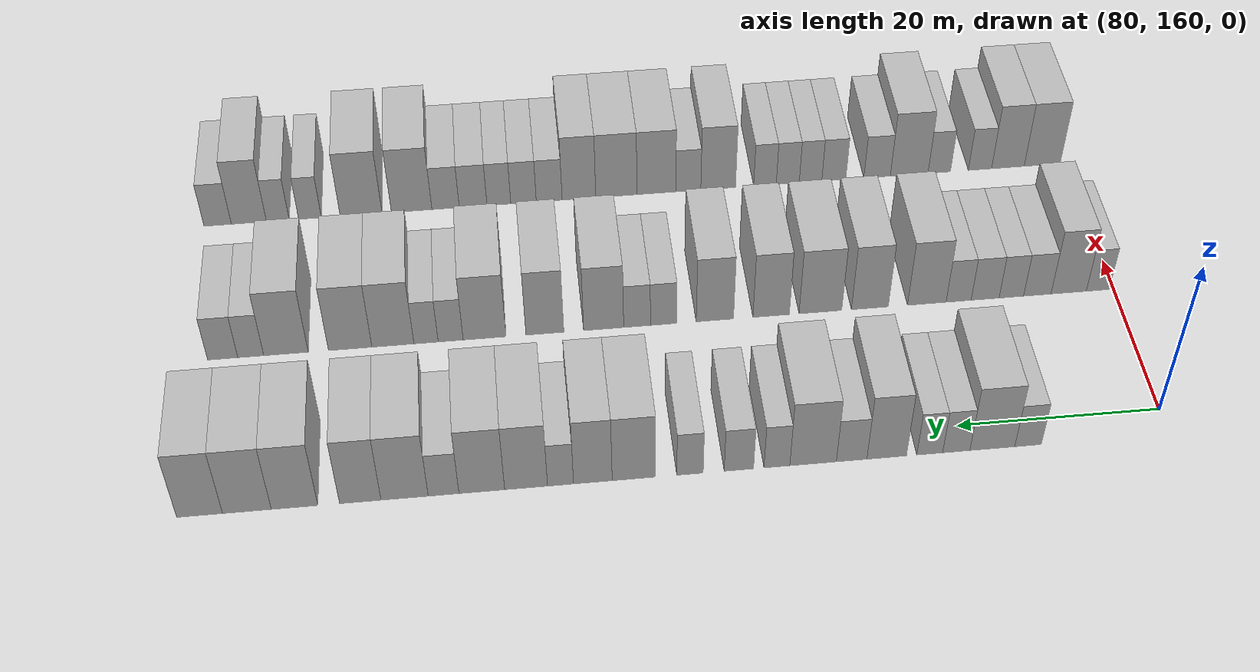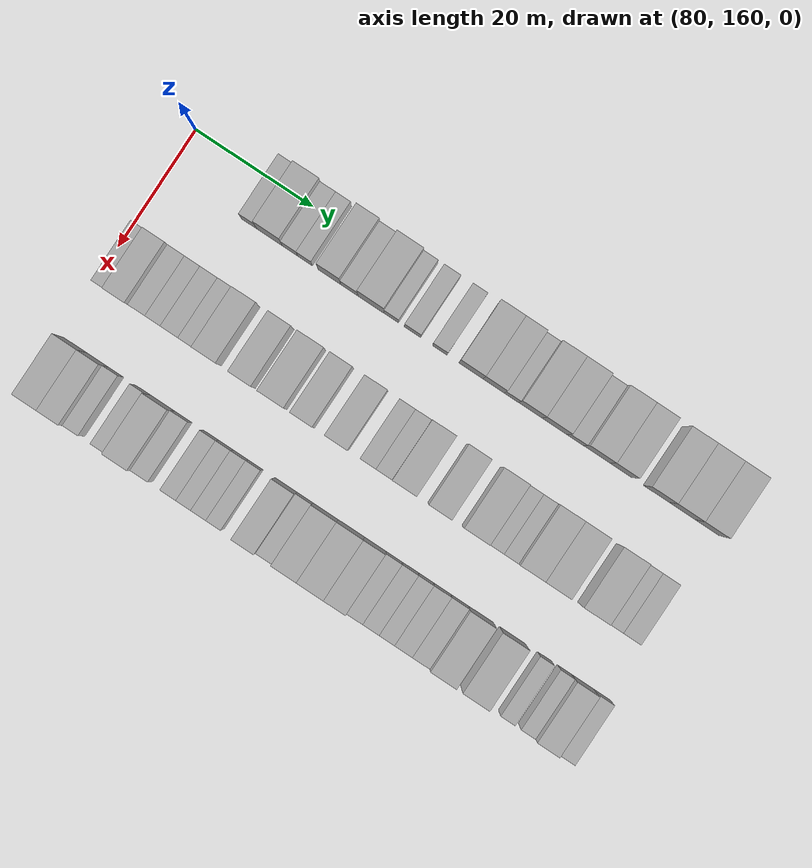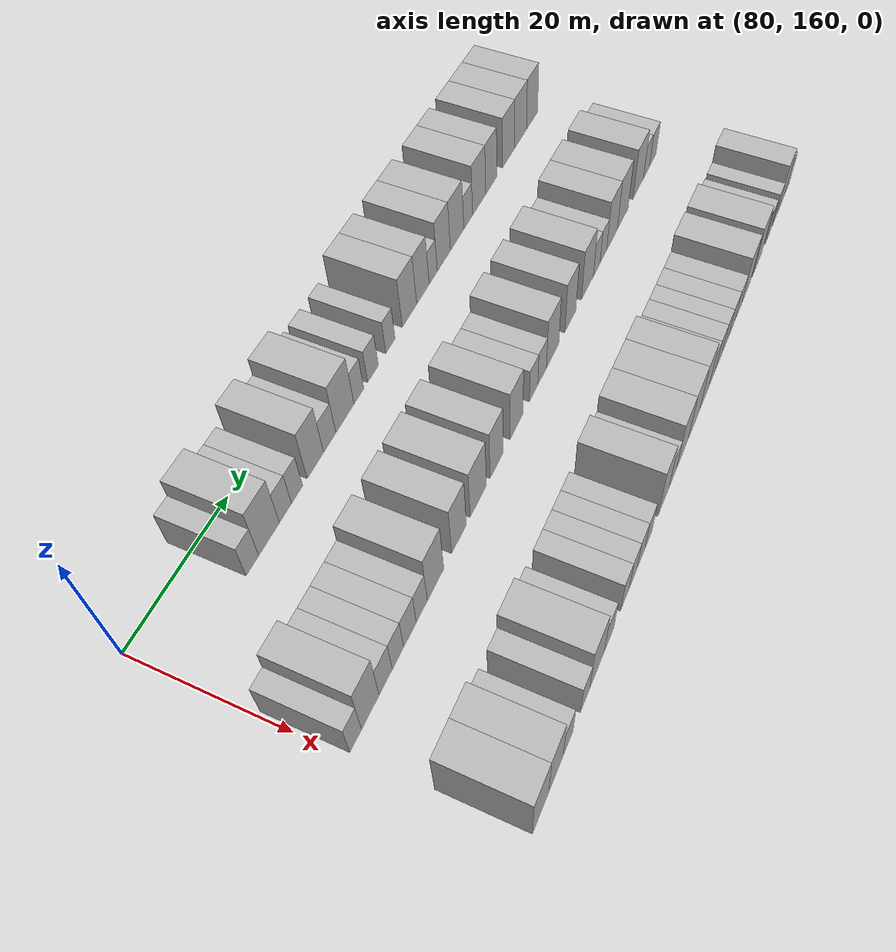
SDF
<sdf version="1.6">
 <world name="default">
  <model name="building_641">
   <static>1</static>
   <pose>82.0000 173.7606 0 0.000000 0.000000 0.000000</pose>
   <link name="link">
    <pose>0 0 3.00 0 0 0</pose>
    <collision name="collision"><geometry><box><size>10.0000 2.5797 6.0000</size></box></geometry></collision>
    <visual name="visual">
     <cast_shadows>0</cast_shadows>
     <geometry><box><size>10.0000 2.5797 6.0000</size></box></geometry>
     <material>
      <script>
       <uri>model://HANNAS_wall/materials/scripts</uri>
       <uri>model://HANNAS_wall/materials/textures</uri>
       <name>vrc/HANNAS_wall</name>
      </script>
     </material>
    </visual>
   </link>
  </model>
  <model name="building_642">
   <static>1</static>
   <pose>82.0000 177.2313 0 0.000000 0.000000 0.000000</pose>
   <link name="link">
    <pose>0 0 4.50 0 0 0</pose>
    <collision name="collision"><geometry><box><size>10.0000 4.3617 9.0000</size></box></geometry></collision>
    <visual name="visual">
     <cast_shadows>0</cast_shadows>
     <geometry><box><size>10.0000 4.3617 9.0000</size></box></geometry>
     <material>
      <script>
       <uri>model://HANNAS_wall/materials/scripts</uri>
       <uri>model://HANNAS_wall/materials/textures</uri>
       <name>vrc/HANNAS_wall</name>
      </script>
     </material>
    </visual>
   </link>
  </model>
  <model name="building_643">
   <static>1</static>
   <pose>82.0000 180.7251 0 0.000000 0.000000 0.000000</pose>
   <link name="link">
    <pose>0 0 3.00 0 0 0</pose>
    <collision name="collision"><geometry><box><size>10.0000 2.6259 6.0000</size></box></geometry></collision>
    <visual name="visual">
     <cast_shadows>0</cast_shadows>
     <geometry><box><size>10.0000 2.6259 6.0000</size></box></geometry>
     <material>
      <script>
       <uri>model://HANNAS_wall/materials/scripts</uri>
       <uri>model://HANNAS_wall/materials/textures</uri>
       <name>vrc/HANNAS_wall</name>
      </script>
     </material>
    </visual>
   </link>
  </model>
  <model name="building_644">
   <static>1</static>
   <pose>82.0000 183.2835 0 0.000000 0.000000 0.000000</pose>
   <link name="link">
    <pose>0 0 3.00 0 0 0</pose>
    <collision name="collision"><geometry><box><size>10.0000 2.4908 6.0000</size></box></geometry></collision>
    <visual name="visual">
     <cast_shadows>0</cast_shadows>
     <geometry><box><size>10.0000 2.4908 6.0000</size></box></geometry>
     <material>
      <script>
       <uri>model://HANNAS_wall/materials/scripts</uri>
       <uri>model://HANNAS_wall/materials/textures</uri>
       <name>vrc/HANNAS_wall</name>
      </script>
     </material>
    </visual>
   </link>
  </model>
  <model name="building_645">
   <static>1</static>
   <pose>82.0000 187.4306 0 0.000000 0.000000 0.000000</pose>
   <link name="link">
    <pose>0 0 4.50 0 0 0</pose>
    <collision name="collision"><geometry><box><size>10.0000 3.8035 9.0000</size></box></geometry></collision>
    <visual name="visual">
     <cast_shadows>0</cast_shadows>
     <geometry><box><size>10.0000 3.8035 9.0000</size></box></geometry>
     <material>
      <script>
       <uri>model://HANNAS_wall/materials/scripts</uri>
       <uri>model://HANNAS_wall/materials/textures</uri>
       <name>vrc/HANNAS_wall</name>
      </script>
     </material>
    </visual>
   </link>
  </model>
  <model name="building_646">
   <static>1</static>
   <pose>82.0000 190.7952 0 0.000000 0.000000 0.000000</pose>
   <link name="link">
    <pose>0 0 3.00 0 0 0</pose>
    <collision name="collision"><geometry><box><size>10.0000 2.9256 6.0000</size></box></geometry></collision>
    <visual name="visual">
     <cast_shadows>0</cast_shadows>
     <geometry><box><size>10.0000 2.9256 6.0000</size></box></geometry>
     <material>
      <script>
       <uri>model://HANNAS_wall/materials/scripts</uri>
       <uri>model://HANNAS_wall/materials/textures</uri>
       <name>vrc/HANNAS_wall</name>
      </script>
     </material>
    </visual>
   </link>
  </model>
  <model name="building_647">
   <static>1</static>
   <pose>82.0000 194.4828 0 0.000000 0.000000 0.000000</pose>
   <link name="link">
    <pose>0 0 4.50 0 0 0</pose>
    <collision name="collision"><geometry><box><size>10.0000 4.4496 9.0000</size></box></geometry></collision>
    <visual name="visual">
     <cast_shadows>0</cast_shadows>
     <geometry><box><size>10.0000 4.4496 9.0000</size></box></geometry>
     <material>
      <script>
       <uri>model://HANNAS_wall/materials/scripts</uri>
       <uri>model://HANNAS_wall/materials/textures</uri>
       <name>vrc/HANNAS_wall</name>
      </script>
     </material>
    </visual>
   </link>
  </model>
  <model name="building_648">
   <static>1</static>
   <pose>82.0000 197.9364 0 0.000000 0.000000 0.000000</pose>
   <link name="link">
    <pose>0 0 3.00 0 0 0</pose>
    <collision name="collision"><geometry><box><size>10.0000 2.4575 6.0000</size></box></geometry></collision>
    <visual name="visual">
     <cast_shadows>0</cast_shadows>
     <geometry><box><size>10.0000 2.4575 6.0000</size></box></geometry>
     <material>
      <script>
       <uri>model://HANNAS_wall/materials/scripts</uri>
       <uri>model://HANNAS_wall/materials/textures</uri>
       <name>vrc/HANNAS_wall</name>
      </script>
     </material>
    </visual>
   </link>
  </model>
  <model name="building_649">
   <static>1</static>
   <pose>82.0000 201.5568 0 0.000000 0.000000 0.000000</pose>
   <link name="link">
    <pose>0 0 3.00 0 0 0</pose>
    <collision name="collision"><geometry><box><size>10.0000 2.7833 6.0000</size></box></geometry></collision>
    <visual name="visual">
     <cast_shadows>0</cast_shadows>
     <geometry><box><size>10.0000 2.7833 6.0000</size></box></geometry>
     <material>
      <script>
       <uri>model://HANNAS_wall/materials/scripts</uri>
       <uri>model://HANNAS_wall/materials/textures</uri>
       <name>vrc/HANNAS_wall</name>
      </script>
     </material>
    </visual>
   </link>
  </model>
  <model name="building_650">
   <static>1</static>
   <pose>82.0000 206.1952 0 0.000000 0.000000 0.000000</pose>
   <link name="link">
    <pose>0 0 3.00 0 0 0</pose>
    <collision name="collision"><geometry><box><size>10.0000 2.4934 6.0000</size></box></geometry></collision>
    <visual name="visual">
     <cast_shadows>0</cast_shadows>
     <geometry><box><size>10.0000 2.4934 6.0000</size></box></geometry>
     <material>
      <script>
       <uri>model://HANNAS_wall/materials/scripts</uri>
       <uri>model://HANNAS_wall/materials/textures</uri>
       <name>vrc/HANNAS_wall</name>
      </script>
     </material>
    </visual>
   </link>
  </model>
  <model name="building_651">
   <static>1</static>
   <pose>82.0000 211.4859 0 0.000000 0.000000 0.000000</pose>
   <link name="link">
    <pose>0 0 4.50 0 0 0</pose>
    <collision name="collision"><geometry><box><size>10.0000 4.0881 9.0000</size></box></geometry></collision>
    <visual name="visual">
     <cast_shadows>0</cast_shadows>
     <geometry><box><size>10.0000 4.0881 9.0000</size></box></geometry>
     <material>
      <script>
       <uri>model://HANNAS_wall/materials/scripts</uri>
       <uri>model://HANNAS_wall/materials/textures</uri>
       <name>vrc/HANNAS_wall</name>
      </script>
     </material>
    </visual>
   </link>
  </model>
  <model name="building_652">
   <static>1</static>
   <pose>82.0000 215.3444 0 0.000000 0.000000 0.000000</pose>
   <link name="link">
    <pose>0 0 4.50 0 0 0</pose>
    <collision name="collision"><geometry><box><size>10.0000 3.6287 9.0000</size></box></geometry></collision>
    <visual name="visual">
     <cast_shadows>0</cast_shadows>
     <geometry><box><size>10.0000 3.6287 9.0000</size></box></geometry>
     <material>
      <script>
       <uri>model://HANNAS_wall/materials/scripts</uri>
       <uri>model://HANNAS_wall/materials/textures</uri>
       <name>vrc/HANNAS_wall</name>
      </script>
     </material>
    </visual>
   </link>
  </model>
  <model name="building_653">
   <static>1</static>
   <pose>82.0000 218.3775 0 0.000000 0.000000 0.000000</pose>
   <link name="link">
    <pose>0 0 3.00 0 0 0</pose>
    <collision name="collision"><geometry><box><size>10.0000 2.4375 6.0000</size></box></geometry></collision>
    <visual name="visual">
     <cast_shadows>0</cast_shadows>
     <geometry><box><size>10.0000 2.4375 6.0000</size></box></geometry>
     <material>
      <script>
       <uri>model://HANNAS_wall/materials/scripts</uri>
       <uri>model://HANNAS_wall/materials/textures</uri>
       <name>vrc/HANNAS_wall</name>
      </script>
     </material>
    </visual>
   </link>
  </model>
  <model name="building_654">
   <static>1</static>
   <pose>82.0000 221.5979 0 0.000000 0.000000 0.000000</pose>
   <link name="link">
    <pose>0 0 4.50 0 0 0</pose>
    <collision name="collision"><geometry><box><size>10.0000 4.0035 9.0000</size></box></geometry></collision>
    <visual name="visual">
     <cast_shadows>0</cast_shadows>
     <geometry><box><size>10.0000 4.0035 9.0000</size></box></geometry>
     <material>
      <script>
       <uri>model://HANNAS_wall/materials/scripts</uri>
       <uri>model://HANNAS_wall/materials/textures</uri>
       <name>vrc/HANNAS_wall</name>
      </script>
     </material>
    </visual>
   </link>
  </model>
  <model name="building_655">
   <static>1</static>
   <pose>82.0000 225.7274 0 0.000000 0.000000 0.000000</pose>
   <link name="link">
    <pose>0 0 4.50 0 0 0</pose>
    <collision name="collision"><geometry><box><size>10.0000 4.2553 9.0000</size></box></geometry></collision>
    <visual name="visual">
     <cast_shadows>0</cast_shadows>
     <geometry><box><size>10.0000 4.2553 9.0000</size></box></geometry>
     <material>
      <script>
       <uri>model://HANNAS_wall/materials/scripts</uri>
       <uri>model://HANNAS_wall/materials/textures</uri>
       <name>vrc/HANNAS_wall</name>
      </script>
     </material>
    </visual>
   </link>
  </model>
  <model name="building_656">
   <static>1</static>
   <pose>82.0000 229.2806 0 0.000000 0.000000 0.000000</pose>
   <link name="link">
    <pose>0 0 3.00 0 0 0</pose>
    <collision name="collision"><geometry><box><size>10.0000 2.8510 6.0000</size></box></geometry></collision>
    <visual name="visual">
     <cast_shadows>0</cast_shadows>
     <geometry><box><size>10.0000 2.8510 6.0000</size></box></geometry>
     <material>
      <script>
       <uri>model://HANNAS_wall/materials/scripts</uri>
       <uri>model://HANNAS_wall/materials/textures</uri>
       <name>vrc/HANNAS_wall</name>
      </script>
     </material>
    </visual>
   </link>
  </model>
  <model name="building_657">
   <static>1</static>
   <pose>82.0000 232.8913 0 0.000000 0.000000 0.000000</pose>
   <link name="link">
    <pose>0 0 4.50 0 0 0</pose>
    <collision name="collision"><geometry><box><size>10.0000 4.3705 9.0000</size></box></geometry></collision>
    <visual name="visual">
     <cast_shadows>0</cast_shadows>
     <geometry><box><size>10.0000 4.3705 9.0000</size></box></geometry>
     <material>
      <script>
       <uri>model://HANNAS_wall/materials/scripts</uri>
       <uri>model://HANNAS_wall/materials/textures</uri>
       <name>vrc/HANNAS_wall</name>
      </script>
     </material>
    </visual>
   </link>
  </model>
  <model name="building_658">
   <static>1</static>
   <pose>82.0000 236.9860 0 0.000000 0.000000 0.000000</pose>
   <link name="link">
    <pose>0 0 4.50 0 0 0</pose>
    <collision name="collision"><geometry><box><size>10.0000 3.8188 9.0000</size></box></geometry></collision>
    <visual name="visual">
     <cast_shadows>0</cast_shadows>
     <geometry><box><size>10.0000 3.8188 9.0000</size></box></geometry>
     <material>
      <script>
       <uri>model://HANNAS_wall/materials/scripts</uri>
       <uri>model://HANNAS_wall/materials/textures</uri>
       <name>vrc/HANNAS_wall</name>
      </script>
     </material>
    </visual>
   </link>
  </model>
  <model name="building_659">
   <static>1</static>
   <pose>82.0000 243.0309 0 0.000000 0.000000 0.000000</pose>
   <link name="link">
    <pose>0 0 4.50 0 0 0</pose>
    <collision name="collision"><geometry><box><size>10.0000 4.2709 9.0000</size></box></geometry></collision>
    <visual name="visual">
     <cast_shadows>0</cast_shadows>
     <geometry><box><size>10.0000 4.2709 9.0000</size></box></geometry>
     <material>
      <script>
       <uri>model://HANNAS_wall/materials/scripts</uri>
       <uri>model://HANNAS_wall/materials/textures</uri>
       <name>vrc/HANNAS_wall</name>
      </script>
     </material>
    </visual>
   </link>
  </model>
  <model name="building_660">
   <static>1</static>
   <pose>82.0000 247.3929 0 0.000000 0.000000 0.000000</pose>
   <link name="link">
    <pose>0 0 4.50 0 0 0</pose>
    <collision name="collision"><geometry><box><size>10.0000 4.4533 9.0000</size></box></geometry></collision>
    <visual name="visual">
     <cast_shadows>0</cast_shadows>
     <geometry><box><size>10.0000 4.4533 9.0000</size></box></geometry>
     <material>
      <script>
       <uri>model://HANNAS_wall/materials/scripts</uri>
       <uri>model://HANNAS_wall/materials/textures</uri>
       <name>vrc/HANNAS_wall</name>
      </script>
     </material>
    </visual>
   </link>
  </model>
  <model name="building_661">
   <static>1</static>
   <pose>82.0000 251.7091 0 0.000000 0.000000 0.000000</pose>
   <link name="link">
    <pose>0 0 4.50 0 0 0</pose>
    <collision name="collision"><geometry><box><size>10.0000 4.1791 9.0000</size></box></geometry></collision>
    <visual name="visual">
     <cast_shadows>0</cast_shadows>
     <geometry><box><size>10.0000 4.1791 9.0000</size></box></geometry>
     <material>
      <script>
       <uri>model://HANNAS_wall/materials/scripts</uri>
       <uri>model://HANNAS_wall/materials/textures</uri>
       <name>vrc/HANNAS_wall</name>
      </script>
     </material>
    </visual>
   </link>
  </model>
  <model name="building_821">
   <static>1</static>
   <pose>101.0000 161.6958 0 0.000000 0.000000 0.000000</pose>
   <link name="link">
    <pose>0 0 3.00 0 0 0</pose>
    <collision name="collision"><geometry><box><size>10.0000 2.4074 6.0000</size></box></geometry></collision>
    <visual name="visual">
     <cast_shadows>0</cast_shadows>
     <geometry><box><size>10.0000 2.4074 6.0000</size></box></geometry>
     <material>
      <script>
       <uri>model://HANNAS_wall/materials/scripts</uri>
       <uri>model://HANNAS_wall/materials/textures</uri>
       <name>vrc/HANNAS_wall</name>
      </script>
     </material>
    </visual>
   </link>
  </model>
  <model name="building_822">
   <static>1</static>
   <pose>101.0000 164.7537 0 0.000000 0.000000 0.000000</pose>
   <link name="link">
    <pose>0 0 4.50 0 0 0</pose>
    <collision name="collision"><geometry><box><size>10.0000 3.7084 9.0000</size></box></geometry></collision>
    <visual name="visual">
     <cast_shadows>0</cast_shadows>
     <geometry><box><size>10.0000 3.7084 9.0000</size></box></geometry>
     <material>
      <script>
       <uri>model://HANNAS_wall/materials/scripts</uri>
       <uri>model://HANNAS_wall/materials/textures</uri>
       <name>vrc/HANNAS_wall</name>
      </script>
     </material>
    </visual>
   </link>
  </model>
  <model name="building_823">
   <static>1</static>
   <pose>101.0000 168.0420 0 0.000000 0.000000 0.000000</pose>
   <link name="link">
    <pose>0 0 3.00 0 0 0</pose>
    <collision name="collision"><geometry><box><size>10.0000 2.8681 6.0000</size></box></geometry></collision>
    <visual name="visual">
     <cast_shadows>0</cast_shadows>
     <geometry><box><size>10.0000 2.8681 6.0000</size></box></geometry>
     <material>
      <script>
       <uri>model://HANNAS_wall/materials/scripts</uri>
       <uri>model://HANNAS_wall/materials/textures</uri>
       <name>vrc/HANNAS_wall</name>
      </script>
     </material>
    </visual>
   </link>
  </model>
  <model name="building_824">
   <static>1</static>
   <pose>101.0000 170.7562 0 0.000000 0.000000 0.000000</pose>
   <link name="link">
    <pose>0 0 3.00 0 0 0</pose>
    <collision name="collision"><geometry><box><size>10.0000 2.5604 6.0000</size></box></geometry></collision>
    <visual name="visual">
     <cast_shadows>0</cast_shadows>
     <geometry><box><size>10.0000 2.5604 6.0000</size></box></geometry>
     <material>
      <script>
       <uri>model://HANNAS_wall/materials/scripts</uri>
       <uri>model://HANNAS_wall/materials/textures</uri>
       <name>vrc/HANNAS_wall</name>
      </script>
     </material>
    </visual>
   </link>
  </model>
  <model name="building_825">
   <static>1</static>
   <pose>101.0000 173.4976 0 0.000000 0.000000 0.000000</pose>
   <link name="link">
    <pose>0 0 3.00 0 0 0</pose>
    <collision name="collision"><geometry><box><size>10.0000 2.9222 6.0000</size></box></geometry></collision>
    <visual name="visual">
     <cast_shadows>0</cast_shadows>
     <geometry><box><size>10.0000 2.9222 6.0000</size></box></geometry>
     <material>
      <script>
       <uri>model://HANNAS_wall/materials/scripts</uri>
       <uri>model://HANNAS_wall/materials/textures</uri>
       <name>vrc/HANNAS_wall</name>
      </script>
     </material>
    </visual>
   </link>
  </model>
  <model name="building_826">
   <static>1</static>
   <pose>101.0000 176.2626 0 0.000000 0.000000 0.000000</pose>
   <link name="link">
    <pose>0 0 3.00 0 0 0</pose>
    <collision name="collision"><geometry><box><size>10.0000 2.6078 6.0000</size></box></geometry></collision>
    <visual name="visual">
     <cast_shadows>0</cast_shadows>
     <geometry><box><size>10.0000 2.6078 6.0000</size></box></geometry>
     <material>
      <script>
       <uri>model://HANNAS_wall/materials/scripts</uri>
       <uri>model://HANNAS_wall/materials/textures</uri>
       <name>vrc/HANNAS_wall</name>
      </script>
     </material>
    </visual>
   </link>
  </model>
  <model name="building_827">
   <static>1</static>
   <pose>101.0000 179.5706 0 0.000000 0.000000 0.000000</pose>
   <link name="link">
    <pose>0 0 4.50 0 0 0</pose>
    <collision name="collision"><geometry><box><size>10.0000 4.0083 9.0000</size></box></geometry></collision>
    <visual name="visual">
     <cast_shadows>0</cast_shadows>
     <geometry><box><size>10.0000 4.0083 9.0000</size></box></geometry>
     <material>
      <script>
       <uri>model://HANNAS_wall/materials/scripts</uri>
       <uri>model://HANNAS_wall/materials/textures</uri>
       <name>vrc/HANNAS_wall</name>
      </script>
     </material>
    </visual>
   </link>
  </model>
  <model name="building_828">
   <static>1</static>
   <pose>101.0000 185.4776 0 0.000000 0.000000 0.000000</pose>
   <link name="link">
    <pose>0 0 4.50 0 0 0</pose>
    <collision name="collision"><geometry><box><size>10.0000 3.8058 9.0000</size></box></geometry></collision>
    <visual name="visual">
     <cast_shadows>0</cast_shadows>
     <geometry><box><size>10.0000 3.8058 9.0000</size></box></geometry>
     <material>
      <script>
       <uri>model://HANNAS_wall/materials/scripts</uri>
       <uri>model://HANNAS_wall/materials/textures</uri>
       <name>vrc/HANNAS_wall</name>
      </script>
     </material>
    </visual>
   </link>
  </model>
  <model name="building_829">
   <static>1</static>
   <pose>101.0000 190.5779 0 0.000000 0.000000 0.000000</pose>
   <link name="link">
    <pose>0 0 4.50 0 0 0</pose>
    <collision name="collision"><geometry><box><size>10.0000 4.3947 9.0000</size></box></geometry></collision>
    <visual name="visual">
     <cast_shadows>0</cast_shadows>
     <geometry><box><size>10.0000 4.3947 9.0000</size></box></geometry>
     <material>
      <script>
       <uri>model://HANNAS_wall/materials/scripts</uri>
       <uri>model://HANNAS_wall/materials/textures</uri>
       <name>vrc/HANNAS_wall</name>
      </script>
     </material>
    </visual>
   </link>
  </model>
  <model name="building_830">
   <static>1</static>
   <pose>101.0000 195.6393 0 0.000000 0.000000 0.000000</pose>
   <link name="link">
    <pose>0 0 4.50 0 0 0</pose>
    <collision name="collision"><geometry><box><size>10.0000 3.7282 9.0000</size></box></geometry></collision>
    <visual name="visual">
     <cast_shadows>0</cast_shadows>
     <geometry><box><size>10.0000 3.7282 9.0000</size></box></geometry>
     <material>
      <script>
       <uri>model://HANNAS_wall/materials/scripts</uri>
       <uri>model://HANNAS_wall/materials/textures</uri>
       <name>vrc/HANNAS_wall</name>
      </script>
     </material>
    </visual>
   </link>
  </model>
  <model name="building_831">
   <static>1</static>
   <pose>101.0000 201.4056 0 0.000000 0.000000 0.000000</pose>
   <link name="link">
    <pose>0 0 4.50 0 0 0</pose>
    <collision name="collision"><geometry><box><size>10.0000 3.8043 9.0000</size></box></geometry></collision>
    <visual name="visual">
     <cast_shadows>0</cast_shadows>
     <geometry><box><size>10.0000 3.8043 9.0000</size></box></geometry>
     <material>
      <script>
       <uri>model://HANNAS_wall/materials/scripts</uri>
       <uri>model://HANNAS_wall/materials/textures</uri>
       <name>vrc/HANNAS_wall</name>
      </script>
     </material>
    </visual>
   </link>
  </model>
  <model name="building_832">
   <static>1</static>
   <pose>101.0000 206.6411 0 0.000000 0.000000 0.000000</pose>
   <link name="link">
    <pose>0 0 3.00 0 0 0</pose>
    <collision name="collision"><geometry><box><size>10.0000 2.6668 6.0000</size></box></geometry></collision>
    <visual name="visual">
     <cast_shadows>0</cast_shadows>
     <geometry><box><size>10.0000 2.6668 6.0000</size></box></geometry>
     <material>
      <script>
       <uri>model://HANNAS_wall/materials/scripts</uri>
       <uri>model://HANNAS_wall/materials/textures</uri>
       <name>vrc/HANNAS_wall</name>
      </script>
     </material>
    </visual>
   </link>
  </model>
  <model name="building_833">
   <static>1</static>
   <pose>101.0000 209.3281 0 0.000000 0.000000 0.000000</pose>
   <link name="link">
    <pose>0 0 3.00 0 0 0</pose>
    <collision name="collision"><geometry><box><size>10.0000 2.7071 6.0000</size></box></geometry></collision>
    <visual name="visual">
     <cast_shadows>0</cast_shadows>
     <geometry><box><size>10.0000 2.7071 6.0000</size></box></geometry>
     <material>
      <script>
       <uri>model://HANNAS_wall/materials/scripts</uri>
       <uri>model://HANNAS_wall/materials/textures</uri>
       <name>vrc/HANNAS_wall</name>
      </script>
     </material>
    </visual>
   </link>
  </model>
  <model name="building_834">
   <static>1</static>
   <pose>101.0000 212.7083 0 0.000000 0.000000 0.000000</pose>
   <link name="link">
    <pose>0 0 4.50 0 0 0</pose>
    <collision name="collision"><geometry><box><size>10.0000 4.0533 9.0000</size></box></geometry></collision>
    <visual name="visual">
     <cast_shadows>0</cast_shadows>
     <geometry><box><size>10.0000 4.0533 9.0000</size></box></geometry>
     <material>
      <script>
       <uri>model://HANNAS_wall/materials/scripts</uri>
       <uri>model://HANNAS_wall/materials/textures</uri>
       <name>vrc/HANNAS_wall</name>
      </script>
     </material>
    </visual>
   </link>
  </model>
  <model name="building_835">
   <static>1</static>
   <pose>101.0000 218.6428 0 0.000000 0.000000 0.000000</pose>
   <link name="link">
    <pose>0 0 4.50 0 0 0</pose>
    <collision name="collision"><geometry><box><size>10.0000 3.8157 9.0000</size></box></geometry></collision>
    <visual name="visual">
     <cast_shadows>0</cast_shadows>
     <geometry><box><size>10.0000 3.8157 9.0000</size></box></geometry>
     <material>
      <script>
       <uri>model://HANNAS_wall/materials/scripts</uri>
       <uri>model://HANNAS_wall/materials/textures</uri>
       <name>vrc/HANNAS_wall</name>
      </script>
     </material>
    </visual>
   </link>
  </model>
  <model name="building_836">
   <static>1</static>
   <pose>101.0000 224.7017 0 0.000000 0.000000 0.000000</pose>
   <link name="link">
    <pose>0 0 4.50 0 0 0</pose>
    <collision name="collision"><geometry><box><size>10.0000 4.3021 9.0000</size></box></geometry></collision>
    <visual name="visual">
     <cast_shadows>0</cast_shadows>
     <geometry><box><size>10.0000 4.3021 9.0000</size></box></geometry>
     <material>
      <script>
       <uri>model://HANNAS_wall/materials/scripts</uri>
       <uri>model://HANNAS_wall/materials/textures</uri>
       <name>vrc/HANNAS_wall</name>
      </script>
     </material>
    </visual>
   </link>
  </model>
  <model name="building_837">
   <static>1</static>
   <pose>101.0000 228.1011 0 0.000000 0.000000 0.000000</pose>
   <link name="link">
    <pose>0 0 3.00 0 0 0</pose>
    <collision name="collision"><geometry><box><size>10.0000 2.4968 6.0000</size></box></geometry></collision>
    <visual name="visual">
     <cast_shadows>0</cast_shadows>
     <geometry><box><size>10.0000 2.4968 6.0000</size></box></geometry>
     <material>
      <script>
       <uri>model://HANNAS_wall/materials/scripts</uri>
       <uri>model://HANNAS_wall/materials/textures</uri>
       <name>vrc/HANNAS_wall</name>
      </script>
     </material>
    </visual>
   </link>
  </model>
  <model name="building_838">
   <static>1</static>
   <pose>101.0000 230.5631 0 0.000000 0.000000 0.000000</pose>
   <link name="link">
    <pose>0 0 3.00 0 0 0</pose>
    <collision name="collision"><geometry><box><size>10.0000 2.4270 6.0000</size></box></geometry></collision>
    <visual name="visual">
     <cast_shadows>0</cast_shadows>
     <geometry><box><size>10.0000 2.4270 6.0000</size></box></geometry>
     <material>
      <script>
       <uri>model://HANNAS_wall/materials/scripts</uri>
       <uri>model://HANNAS_wall/materials/textures</uri>
       <name>vrc/HANNAS_wall</name>
      </script>
     </material>
    </visual>
   </link>
  </model>
  <model name="building_839">
   <static>1</static>
   <pose>101.0000 233.8671 0 0.000000 0.000000 0.000000</pose>
   <link name="link">
    <pose>0 0 4.50 0 0 0</pose>
    <collision name="collision"><geometry><box><size>10.0000 4.1810 9.0000</size></box></geometry></collision>
    <visual name="visual">
     <cast_shadows>0</cast_shadows>
     <geometry><box><size>10.0000 4.1810 9.0000</size></box></geometry>
     <material>
      <script>
       <uri>model://HANNAS_wall/materials/scripts</uri>
       <uri>model://HANNAS_wall/materials/textures</uri>
       <name>vrc/HANNAS_wall</name>
      </script>
     </material>
    </visual>
   </link>
  </model>
  <model name="building_840">
   <static>1</static>
   <pose>101.0000 238.1121 0 0.000000 0.000000 0.000000</pose>
   <link name="link">
    <pose>0 0 4.50 0 0 0</pose>
    <collision name="collision"><geometry><box><size>10.0000 4.3090 9.0000</size></box></geometry></collision>
    <visual name="visual">
     <cast_shadows>0</cast_shadows>
     <geometry><box><size>10.0000 4.3090 9.0000</size></box></geometry>
     <material>
      <script>
       <uri>model://HANNAS_wall/materials/scripts</uri>
       <uri>model://HANNAS_wall/materials/textures</uri>
       <name>vrc/HANNAS_wall</name>
      </script>
     </material>
    </visual>
   </link>
  </model>
  <model name="building_841">
   <static>1</static>
   <pose>101.0000 244.4631 0 0.000000 0.000000 0.000000</pose>
   <link name="link">
    <pose>0 0 4.50 0 0 0</pose>
    <collision name="collision"><geometry><box><size>10.0000 4.3930 9.0000</size></box></geometry></collision>
    <visual name="visual">
     <cast_shadows>0</cast_shadows>
     <geometry><box><size>10.0000 4.3930 9.0000</size></box></geometry>
     <material>
      <script>
       <uri>model://HANNAS_wall/materials/scripts</uri>
       <uri>model://HANNAS_wall/materials/textures</uri>
       <name>vrc/HANNAS_wall</name>
      </script>
     </material>
    </visual>
   </link>
  </model>
  <model name="building_842">
   <static>1</static>
   <pose>101.0000 247.9395 0 0.000000 0.000000 0.000000</pose>
   <link name="link">
    <pose>0 0 3.00 0 0 0</pose>
    <collision name="collision"><geometry><box><size>10.0000 2.5599 6.0000</size></box></geometry></collision>
    <visual name="visual">
     <cast_shadows>0</cast_shadows>
     <geometry><box><size>10.0000 2.5599 6.0000</size></box></geometry>
     <material>
      <script>
       <uri>model://HANNAS_wall/materials/scripts</uri>
       <uri>model://HANNAS_wall/materials/textures</uri>
       <name>vrc/HANNAS_wall</name>
      </script>
     </material>
    </visual>
   </link>
  </model>
  <model name="building_843">
   <static>1</static>
   <pose>101.0000 250.6990 0 0.000000 0.000000 0.000000</pose>
   <link name="link">
    <pose>0 0 3.00 0 0 0</pose>
    <collision name="collision"><geometry><box><size>10.0000 2.9591 6.0000</size></box></geometry></collision>
    <visual name="visual">
     <cast_shadows>0</cast_shadows>
     <geometry><box><size>10.0000 2.9591 6.0000</size></box></geometry>
     <material>
      <script>
       <uri>model://HANNAS_wall/materials/scripts</uri>
       <uri>model://HANNAS_wall/materials/textures</uri>
       <name>vrc/HANNAS_wall</name>
      </script>
     </material>
    </visual>
   </link>
  </model>
  <model name="building_995">
   <static>1</static>
   <pose>120.0000 162.6747 0 0.000000 0.000000 0.000000</pose>
   <link name="link">
    <pose>0 0 4.50 0 0 0</pose>
    <collision name="collision"><geometry><box><size>10.0000 4.0329 9.0000</size></box></geometry></collision>
    <visual name="visual">
     <cast_shadows>0</cast_shadows>
     <geometry><box><size>10.0000 4.0329 9.0000</size></box></geometry>
     <material>
      <script>
       <uri>model://HANNAS_wall/materials/scripts</uri>
       <uri>model://HANNAS_wall/materials/textures</uri>
       <name>vrc/HANNAS_wall</name>
      </script>
     </material>
    </visual>
   </link>
  </model>
  <model name="building_996">
   <static>1</static>
   <pose>120.0000 166.5208 0 0.000000 0.000000 0.000000</pose>
   <link name="link">
    <pose>0 0 4.50 0 0 0</pose>
    <collision name="collision"><geometry><box><size>10.0000 3.6595 9.0000</size></box></geometry></collision>
    <visual name="visual">
     <cast_shadows>0</cast_shadows>
     <geometry><box><size>10.0000 3.6595 9.0000</size></box></geometry>
     <material>
      <script>
       <uri>model://HANNAS_wall/materials/scripts</uri>
       <uri>model://HANNAS_wall/materials/textures</uri>
       <name>vrc/HANNAS_wall</name>
      </script>
     </material>
    </visual>
   </link>
  </model>
  <model name="building_997">
   <static>1</static>
   <pose>120.0000 169.6492 0 0.000000 0.000000 0.000000</pose>
   <link name="link">
    <pose>0 0 3.00 0 0 0</pose>
    <collision name="collision"><geometry><box><size>10.0000 2.5972 6.0000</size></box></geometry></collision>
    <visual name="visual">
     <cast_shadows>0</cast_shadows>
     <geometry><box><size>10.0000 2.5972 6.0000</size></box></geometry>
     <material>
      <script>
       <uri>model://HANNAS_wall/materials/scripts</uri>
       <uri>model://HANNAS_wall/materials/textures</uri>
       <name>vrc/HANNAS_wall</name>
      </script>
     </material>
    </visual>
   </link>
  </model>
  <model name="building_998">
   <static>1</static>
   <pose>120.0000 174.1956 0 0.000000 0.000000 0.000000</pose>
   <link name="link">
    <pose>0 0 3.00 0 0 0</pose>
    <collision name="collision"><geometry><box><size>10.0000 2.4956 6.0000</size></box></geometry></collision>
    <visual name="visual">
     <cast_shadows>0</cast_shadows>
     <geometry><box><size>10.0000 2.4956 6.0000</size></box></geometry>
     <material>
      <script>
       <uri>model://HANNAS_wall/materials/scripts</uri>
       <uri>model://HANNAS_wall/materials/textures</uri>
       <name>vrc/HANNAS_wall</name>
      </script>
     </material>
    </visual>
   </link>
  </model>
  <model name="building_999">
   <static>1</static>
   <pose>120.0000 177.5389 0 0.000000 0.000000 0.000000</pose>
   <link name="link">
    <pose>0 0 4.50 0 0 0</pose>
    <collision name="collision"><geometry><box><size>10.0000 4.1911 9.0000</size></box></geometry></collision>
    <visual name="visual">
     <cast_shadows>0</cast_shadows>
     <geometry><box><size>10.0000 4.1911 9.0000</size></box></geometry>
     <material>
      <script>
       <uri>model://HANNAS_wall/materials/scripts</uri>
       <uri>model://HANNAS_wall/materials/textures</uri>
       <name>vrc/HANNAS_wall</name>
      </script>
     </material>
    </visual>
   </link>
  </model>
  <model name="building_1000">
   <static>1</static>
   <pose>120.0000 181.1027 0 0.000000 0.000000 0.000000</pose>
   <link name="link">
    <pose>0 0 3.00 0 0 0</pose>
    <collision name="collision"><geometry><box><size>10.0000 2.9364 6.0000</size></box></geometry></collision>
    <visual name="visual">
     <cast_shadows>0</cast_shadows>
     <geometry><box><size>10.0000 2.9364 6.0000</size></box></geometry>
     <material>
      <script>
       <uri>model://HANNAS_wall/materials/scripts</uri>
       <uri>model://HANNAS_wall/materials/textures</uri>
       <name>vrc/HANNAS_wall</name>
      </script>
     </material>
    </visual>
   </link>
  </model>
  <model name="building_1001">
   <static>1</static>
   <pose>120.0000 185.8954 0 0.000000 0.000000 0.000000</pose>
   <link name="link">
    <pose>0 0 3.00 0 0 0</pose>
    <collision name="collision"><geometry><box><size>10.0000 2.6491 6.0000</size></box></geometry></collision>
    <visual name="visual">
     <cast_shadows>0</cast_shadows>
     <geometry><box><size>10.0000 2.6491 6.0000</size></box></geometry>
     <material>
      <script>
       <uri>model://HANNAS_wall/materials/scripts</uri>
       <uri>model://HANNAS_wall/materials/textures</uri>
       <name>vrc/HANNAS_wall</name>
      </script>
     </material>
    </visual>
   </link>
  </model>
  <model name="building_1002">
   <static>1</static>
   <pose>120.0000 188.4627 0 0.000000 0.000000 0.000000</pose>
   <link name="link">
    <pose>0 0 3.00 0 0 0</pose>
    <collision name="collision"><geometry><box><size>10.0000 2.4854 6.0000</size></box></geometry></collision>
    <visual name="visual">
     <cast_shadows>0</cast_shadows>
     <geometry><box><size>10.0000 2.4854 6.0000</size></box></geometry>
     <material>
      <script>
       <uri>model://HANNAS_wall/materials/scripts</uri>
       <uri>model://HANNAS_wall/materials/textures</uri>
       <name>vrc/HANNAS_wall</name>
      </script>
     </material>
    </visual>
   </link>
  </model>
  <model name="building_1003">
   <static>1</static>
   <pose>120.0000 190.9725 0 0.000000 0.000000 0.000000</pose>
   <link name="link">
    <pose>0 0 3.00 0 0 0</pose>
    <collision name="collision"><geometry><box><size>10.0000 2.5342 6.0000</size></box></geometry></collision>
    <visual name="visual">
     <cast_shadows>0</cast_shadows>
     <geometry><box><size>10.0000 2.5342 6.0000</size></box></geometry>
     <material>
      <script>
       <uri>model://HANNAS_wall/materials/scripts</uri>
       <uri>model://HANNAS_wall/materials/textures</uri>
       <name>vrc/HANNAS_wall</name>
      </script>
     </material>
    </visual>
   </link>
  </model>
  <model name="building_1004">
   <static>1</static>
   <pose>120.0000 193.4775 0 0.000000 0.000000 0.000000</pose>
   <link name="link">
    <pose>0 0 3.00 0 0 0</pose>
    <collision name="collision"><geometry><box><size>10.0000 2.4759 6.0000</size></box></geometry></collision>
    <visual name="visual">
     <cast_shadows>0</cast_shadows>
     <geometry><box><size>10.0000 2.4759 6.0000</size></box></geometry>
     <material>
      <script>
       <uri>model://HANNAS_wall/materials/scripts</uri>
       <uri>model://HANNAS_wall/materials/textures</uri>
       <name>vrc/HANNAS_wall</name>
      </script>
     </material>
    </visual>
   </link>
  </model>
  <model name="building_1005">
   <static>1</static>
   <pose>120.0000 198.6137 0 0.000000 0.000000 0.000000</pose>
   <link name="link">
    <pose>0 0 4.50 0 0 0</pose>
    <collision name="collision"><geometry><box><size>10.0000 3.7964 9.0000</size></box></geometry></collision>
    <visual name="visual">
     <cast_shadows>0</cast_shadows>
     <geometry><box><size>10.0000 3.7964 9.0000</size></box></geometry>
     <material>
      <script>
       <uri>model://HANNAS_wall/materials/scripts</uri>
       <uri>model://HANNAS_wall/materials/textures</uri>
       <name>vrc/HANNAS_wall</name>
      </script>
     </material>
    </visual>
   </link>
  </model>
  <model name="building_1006">
   <static>1</static>
   <pose>120.0000 201.8765 0 0.000000 0.000000 0.000000</pose>
   <link name="link">
    <pose>0 0 3.00 0 0 0</pose>
    <collision name="collision"><geometry><box><size>10.0000 2.7291 6.0000</size></box></geometry></collision>
    <visual name="visual">
     <cast_shadows>0</cast_shadows>
     <geometry><box><size>10.0000 2.7291 6.0000</size></box></geometry>
     <material>
      <script>
       <uri>model://HANNAS_wall/materials/scripts</uri>
       <uri>model://HANNAS_wall/materials/textures</uri>
       <name>vrc/HANNAS_wall</name>
      </script>
     </material>
    </visual>
   </link>
  </model>
  <model name="building_1007">
   <static>1</static>
   <pose>120.0000 205.3583 0 0.000000 0.000000 0.000000</pose>
   <link name="link">
    <pose>0 0 4.50 0 0 0</pose>
    <collision name="collision"><geometry><box><size>10.0000 4.2345 9.0000</size></box></geometry></collision>
    <visual name="visual">
     <cast_shadows>0</cast_shadows>
     <geometry><box><size>10.0000 4.2345 9.0000</size></box></geometry>
     <material>
      <script>
       <uri>model://HANNAS_wall/materials/scripts</uri>
       <uri>model://HANNAS_wall/materials/textures</uri>
       <name>vrc/HANNAS_wall</name>
      </script>
     </material>
    </visual>
   </link>
  </model>
  <model name="building_1008">
   <static>1</static>
   <pose>120.0000 209.7074 0 0.000000 0.000000 0.000000</pose>
   <link name="link">
    <pose>0 0 4.50 0 0 0</pose>
    <collision name="collision"><geometry><box><size>10.0000 4.4637 9.0000</size></box></geometry></collision>
    <visual name="visual">
     <cast_shadows>0</cast_shadows>
     <geometry><box><size>10.0000 4.4637 9.0000</size></box></geometry>
     <material>
      <script>
       <uri>model://HANNAS_wall/materials/scripts</uri>
       <uri>model://HANNAS_wall/materials/textures</uri>
       <name>vrc/HANNAS_wall</name>
      </script>
     </material>
    </visual>
   </link>
  </model>
  <model name="building_1009">
   <static>1</static>
   <pose>120.0000 213.7612 0 0.000000 0.000000 0.000000</pose>
   <link name="link">
    <pose>0 0 4.50 0 0 0</pose>
    <collision name="collision"><geometry><box><size>10.0000 3.6440 9.0000</size></box></geometry></collision>
    <visual name="visual">
     <cast_shadows>0</cast_shadows>
     <geometry><box><size>10.0000 3.6440 9.0000</size></box></geometry>
     <material>
      <script>
       <uri>model://HANNAS_wall/materials/scripts</uri>
       <uri>model://HANNAS_wall/materials/textures</uri>
       <name>vrc/HANNAS_wall</name>
      </script>
     </material>
    </visual>
   </link>
  </model>
  <model name="building_1010">
   <static>1</static>
   <pose>120.0000 216.9775 0 0.000000 0.000000 0.000000</pose>
   <link name="link">
    <pose>0 0 3.00 0 0 0</pose>
    <collision name="collision"><geometry><box><size>10.0000 2.7886 6.0000</size></box></geometry></collision>
    <visual name="visual">
     <cast_shadows>0</cast_shadows>
     <geometry><box><size>10.0000 2.7886 6.0000</size></box></geometry>
     <material>
      <script>
       <uri>model://HANNAS_wall/materials/scripts</uri>
       <uri>model://HANNAS_wall/materials/textures</uri>
       <name>vrc/HANNAS_wall</name>
      </script>
     </material>
    </visual>
   </link>
  </model>
  <model name="building_1011">
   <static>1</static>
   <pose>120.0000 219.7453 0 0.000000 0.000000 0.000000</pose>
   <link name="link">
    <pose>0 0 3.00 0 0 0</pose>
    <collision name="collision"><geometry><box><size>10.0000 2.7471 6.0000</size></box></geometry></collision>
    <visual name="visual">
     <cast_shadows>0</cast_shadows>
     <geometry><box><size>10.0000 2.7471 6.0000</size></box></geometry>
     <material>
      <script>
       <uri>model://HANNAS_wall/materials/scripts</uri>
       <uri>model://HANNAS_wall/materials/textures</uri>
       <name>vrc/HANNAS_wall</name>
      </script>
     </material>
    </visual>
   </link>
  </model>
  <model name="building_1012">
   <static>1</static>
   <pose>120.0000 222.4003 0 0.000000 0.000000 0.000000</pose>
   <link name="link">
    <pose>0 0 3.00 0 0 0</pose>
    <collision name="collision"><geometry><box><size>10.0000 2.5627 6.0000</size></box></geometry></collision>
    <visual name="visual">
     <cast_shadows>0</cast_shadows>
     <geometry><box><size>10.0000 2.5627 6.0000</size></box></geometry>
     <material>
      <script>
       <uri>model://HANNAS_wall/materials/scripts</uri>
       <uri>model://HANNAS_wall/materials/textures</uri>
       <name>vrc/HANNAS_wall</name>
      </script>
     </material>
    </visual>
   </link>
  </model>
  <model name="building_1013">
   <static>1</static>
   <pose>120.0000 225.1696 0 0.000000 0.000000 0.000000</pose>
   <link name="link">
    <pose>0 0 3.00 0 0 0</pose>
    <collision name="collision"><geometry><box><size>10.0000 2.9759 6.0000</size></box></geometry></collision>
    <visual name="visual">
     <cast_shadows>0</cast_shadows>
     <geometry><box><size>10.0000 2.9759 6.0000</size></box></geometry>
     <material>
      <script>
       <uri>model://HANNAS_wall/materials/scripts</uri>
       <uri>model://HANNAS_wall/materials/textures</uri>
       <name>vrc/HANNAS_wall</name>
      </script>
     </material>
    </visual>
   </link>
  </model>
  <model name="building_1014">
   <static>1</static>
   <pose>120.0000 228.1235 0 0.000000 0.000000 0.000000</pose>
   <link name="link">
    <pose>0 0 3.00 0 0 0</pose>
    <collision name="collision"><geometry><box><size>10.0000 2.9319 6.0000</size></box></geometry></collision>
    <visual name="visual">
     <cast_shadows>0</cast_shadows>
     <geometry><box><size>10.0000 2.9319 6.0000</size></box></geometry>
     <material>
      <script>
       <uri>model://HANNAS_wall/materials/scripts</uri>
       <uri>model://HANNAS_wall/materials/textures</uri>
       <name>vrc/HANNAS_wall</name>
      </script>
     </material>
    </visual>
   </link>
  </model>
  <model name="building_1015">
   <static>1</static>
   <pose>120.0000 231.7508 0 0.000000 0.000000 0.000000</pose>
   <link name="link">
    <pose>0 0 4.50 0 0 0</pose>
    <collision name="collision"><geometry><box><size>10.0000 4.3226 9.0000</size></box></geometry></collision>
    <visual name="visual">
     <cast_shadows>0</cast_shadows>
     <geometry><box><size>10.0000 4.3226 9.0000</size></box></geometry>
     <material>
      <script>
       <uri>model://HANNAS_wall/materials/scripts</uri>
       <uri>model://HANNAS_wall/materials/textures</uri>
       <name>vrc/HANNAS_wall</name>
      </script>
     </material>
    </visual>
   </link>
  </model>
  <model name="building_1016">
   <static>1</static>
   <pose>120.0000 237.1398 0 0.000000 0.000000 0.000000</pose>
   <link name="link">
    <pose>0 0 4.50 0 0 0</pose>
    <collision name="collision"><geometry><box><size>10.0000 4.4553 9.0000</size></box></geometry></collision>
    <visual name="visual">
     <cast_shadows>0</cast_shadows>
     <geometry><box><size>10.0000 4.4553 9.0000</size></box></geometry>
     <material>
      <script>
       <uri>model://HANNAS_wall/materials/scripts</uri>
       <uri>model://HANNAS_wall/materials/textures</uri>
       <name>vrc/HANNAS_wall</name>
      </script>
     </material>
    </visual>
   </link>
  </model>
  <model name="building_1017">
   <static>1</static>
   <pose>120.0000 242.5711 0 0.000000 0.000000 0.000000</pose>
   <link name="link">
    <pose>0 0 3.00 0 0 0</pose>
    <collision name="collision"><geometry><box><size>10.0000 2.4073 6.0000</size></box></geometry></collision>
    <visual name="visual">
     <cast_shadows>0</cast_shadows>
     <geometry><box><size>10.0000 2.4073 6.0000</size></box></geometry>
     <material>
      <script>
       <uri>model://HANNAS_wall/materials/scripts</uri>
       <uri>model://HANNAS_wall/materials/textures</uri>
       <name>vrc/HANNAS_wall</name>
      </script>
     </material>
    </visual>
   </link>
  </model>
  <model name="building_1018">
   <static>1</static>
   <pose>120.0000 245.9776 0 0.000000 0.000000 0.000000</pose>
   <link name="link">
    <pose>0 0 3.00 0 0 0</pose>
    <collision name="collision"><geometry><box><size>10.0000 2.4055 6.0000</size></box></geometry></collision>
    <visual name="visual">
     <cast_shadows>0</cast_shadows>
     <geometry><box><size>10.0000 2.4055 6.0000</size></box></geometry>
     <material>
      <script>
       <uri>model://HANNAS_wall/materials/scripts</uri>
       <uri>model://HANNAS_wall/materials/textures</uri>
       <name>vrc/HANNAS_wall</name>
      </script>
     </material>
    </visual>
   </link>
  </model>
  <model name="building_1019">
   <static>1</static>
   <pose>120.0000 249.0329 0 0.000000 0.000000 0.000000</pose>
   <link name="link">
    <pose>0 0 4.50 0 0 0</pose>
    <collision name="collision"><geometry><box><size>10.0000 3.7051 9.0000</size></box></geometry></collision>
    <visual name="visual">
     <cast_shadows>0</cast_shadows>
     <geometry><box><size>10.0000 3.7051 9.0000</size></box></geometry>
     <material>
      <script>
       <uri>model://HANNAS_wall/materials/scripts</uri>
       <uri>model://HANNAS_wall/materials/textures</uri>
       <name>vrc/HANNAS_wall</name>
      </script>
     </material>
    </visual>
   </link>
  </model>
  <model name="building_1020">
   <static>1</static>
   <pose>120.0000 252.3275 0 0.000000 0.000000 0.000000</pose>
   <link name="link">
    <pose>0 0 3.00 0 0 0</pose>
    <collision name="collision"><geometry><box><size>10.0000 2.8840 6.0000</size></box></geometry></collision>
    <visual name="visual">
     <cast_shadows>0</cast_shadows>
     <geometry><box><size>10.0000 2.8840 6.0000</size></box></geometry>
     <material>
      <script>
       <uri>model://HANNAS_wall/materials/scripts</uri>
       <uri>model://HANNAS_wall/materials/textures</uri>
       <name>vrc/HANNAS_wall</name>
      </script>
     </material>
    </visual>
   </link>
  </model>
 </world>
</sdf>
